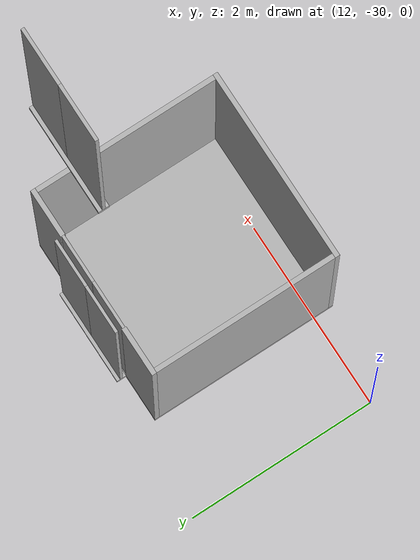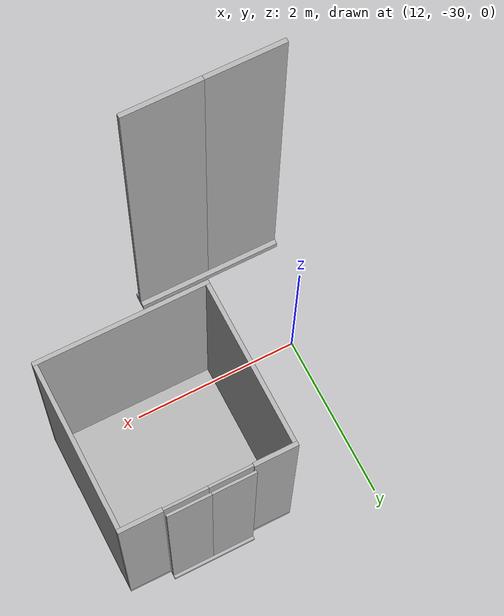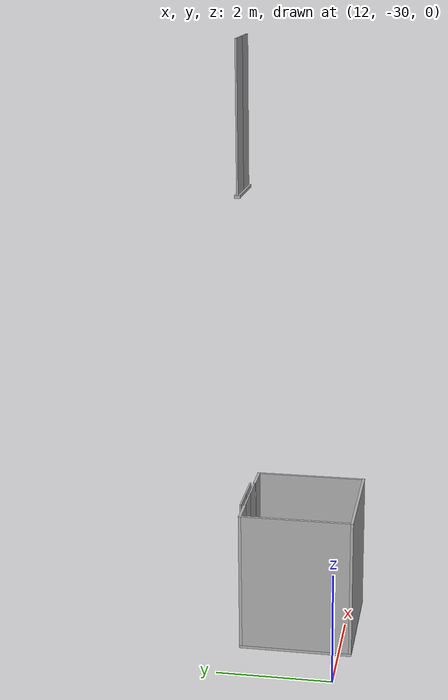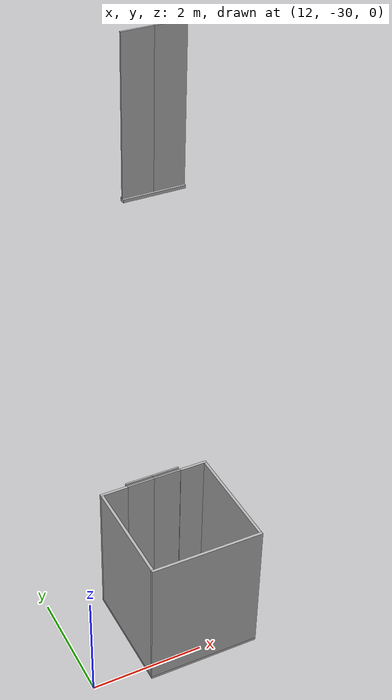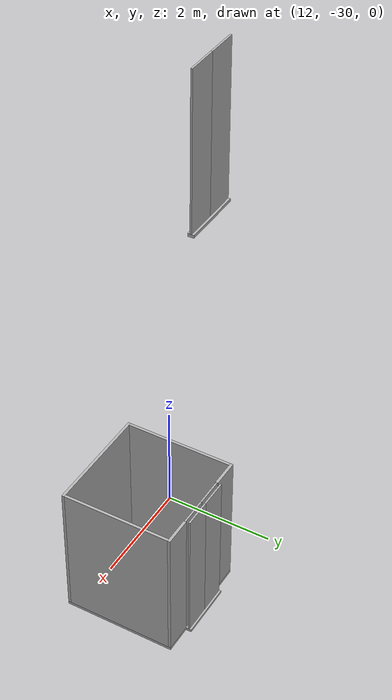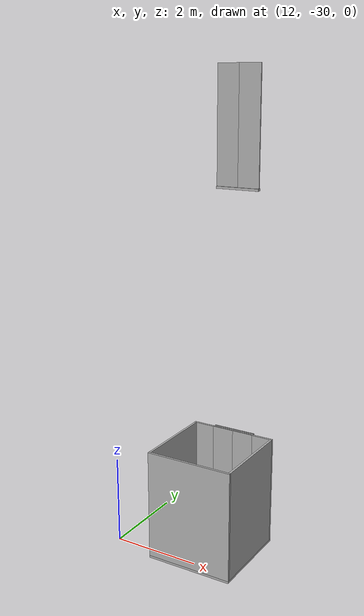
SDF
<sdf version="1.7">
 <world name="sim_world">
  <model name="ShaftDoor_lift_L1_doors">
   <pose>13.973163058344308 -28.166613667447187 0.0 0 0 0.0</pose>
   <link name="right_door">
    <pose>0.25 0 1.25 0 0 0</pose>
    <visual name="right_door_visual">
     <geometry><box><size>0.5 0.03 2.5</size></box></geometry>
     <material>
      <ambient>0.5 0.5 0.5 1</ambient>
      <diffuse>0.7 0.7 0.7 1</diffuse>
      <specular>0.6 0.6 0.6 1</specular>
      <emissive>0.1 0.1 0.1 1</emissive>
     </material>
    </visual>
    <collision name="right_door_collision">
     <geometry><box><size>0.5 0.03 2.5</size></box></geometry>
     <surface><contact><collide_bitmask>0x02</collide_bitmask></contact></surface>
    </collision>
   </link>
   <link name="left_door">
    <pose>-0.25 0 1.25 0 0 0</pose>
    <visual name="left_door_visual">
     <geometry><box><size>0.5 0.03 2.5</size></box></geometry>
     <material>
      <ambient>0.5 0.5 0.5 1</ambient>
      <diffuse>0.7 0.7 0.7 1</diffuse>
      <specular>0.6 0.6 0.6 1</specular>
      <emissive>0.1 0.1 0.1 1</emissive>
     </material>
    </visual>
    <collision name="left_door_collision">
     <geometry><box><size>0.5 0.03 2.5</size></box></geometry>
     <surface><contact><collide_bitmask>0x02</collide_bitmask></contact></surface>
    </collision>
   </link>
   <joint name="right_joint" type="prismatic">
    <parent>world</parent>
    <child>right_door</child>
    <axis><xyz>1 0 0</xyz><limit><lower>0</lower><upper>0.5</upper></limit></axis>
   </joint>
   <joint name="left_joint" type="prismatic">
    <parent>world</parent>
    <child>left_door</child>
    <axis><xyz>1 0 0</xyz><limit><lower>-0.5</lower><upper>0</upper></limit></axis>
   </joint>
   <link name="ramp">
    <pose>0 0 -0.025 0 0 0</pose>
    <visual name="ramp_visual">
     <geometry><box><size>1.0 0.1 0.05</size></box></geometry>
     <material>
      <ambient>0.5 0.5 0.5 1</ambient>
      <diffuse>0.7 0.7 0.7 1</diffuse>
      <specular>0.6 0.6 0.6 1</specular>
      <emissive>0.1 0.1 0.1 1</emissive>
     </material>
    </visual>
    <collision name="ramp_collision">
     <geometry><box><size>1.0 0.1 0.05</size></box></geometry>
     <surface><contact><collide_bitmask>0x02</collide_bitmask></contact></surface>
    </collision>
   </link>
   <joint name="ramp_joint" type="fixed"><parent>world</parent><child>ramp</child></joint>
   <plugin name="register_component" filename="libregister_component.so">
    <component name="Door">
     <v_max_door>0.3</v_max_door>
     <a_max_door>0.2</a_max_door>
     <a_nom_door>0.1</a_nom_door>
     <dx_min_door>0.0001</dx_min_door>
     <f_max_door>35.0</f_max_door>
     <door left_joint_name="left_joint" name="ShaftDoor_lift_L1_doors" right_joint_name="right_joint" type="DoubleSlidingDoor"/>
    </component>
   </plugin>
  </model>
  <model name="ShaftDoor_lift_L2_doors">
   <pose>13.973163058344308 -28.166613667447187 8.0 0 0 0.0</pose>
   <link name="right_door">
    <pose>0.25 0 1.25 0 0 0</pose>
    <visual name="right_door_visual">
     <geometry><box><size>0.5 0.03 2.5</size></box></geometry>
     <material>
      <ambient>0.5 0.5 0.5 1</ambient>
      <diffuse>0.7 0.7 0.7 1</diffuse>
      <specular>0.6 0.6 0.6 1</specular>
      <emissive>0.1 0.1 0.1 1</emissive>
     </material>
    </visual>
    <collision name="right_door_collision">
     <geometry><box><size>0.5 0.03 2.5</size></box></geometry>
     <surface><contact><collide_bitmask>0x02</collide_bitmask></contact></surface>
    </collision>
   </link>
   <link name="left_door">
    <pose>-0.25 0 1.25 0 0 0</pose>
    <visual name="left_door_visual">
     <geometry><box><size>0.5 0.03 2.5</size></box></geometry>
     <material>
      <ambient>0.5 0.5 0.5 1</ambient>
      <diffuse>0.7 0.7 0.7 1</diffuse>
      <specular>0.6 0.6 0.6 1</specular>
      <emissive>0.1 0.1 0.1 1</emissive>
     </material>
    </visual>
    <collision name="left_door_collision">
     <geometry><box><size>0.5 0.03 2.5</size></box></geometry>
     <surface><contact><collide_bitmask>0x02</collide_bitmask></contact></surface>
    </collision>
   </link>
   <joint name="right_joint" type="prismatic">
    <parent>world</parent>
    <child>right_door</child>
    <axis><xyz>1 0 0</xyz><limit><lower>0</lower><upper>0.5</upper></limit></axis>
   </joint>
   <joint name="left_joint" type="prismatic">
    <parent>world</parent>
    <child>left_door</child>
    <axis><xyz>1 0 0</xyz><limit><lower>-0.5</lower><upper>0</upper></limit></axis>
   </joint>
   <link name="ramp">
    <pose>0 0 -0.025 0 0 0</pose>
    <visual name="ramp_visual">
     <geometry><box><size>1.0 0.1 0.05</size></box></geometry>
     <material>
      <ambient>0.5 0.5 0.5 1</ambient>
      <diffuse>0.7 0.7 0.7 1</diffuse>
      <specular>0.6 0.6 0.6 1</specular>
      <emissive>0.1 0.1 0.1 1</emissive>
     </material>
    </visual>
    <collision name="ramp_collision">
     <geometry><box><size>1.0 0.1 0.05</size></box></geometry>
     <surface><contact><collide_bitmask>0x02</collide_bitmask></contact></surface>
    </collision>
   </link>
   <joint name="ramp_joint" type="fixed"><parent>world</parent><child>ramp</child></joint>
   <plugin name="register_component" filename="libregister_component.so">
    <component name="Door">
     <v_max_door>0.3</v_max_door>
     <a_max_door>0.2</a_max_door>
     <a_nom_door>0.1</a_nom_door>
     <dx_min_door>0.0001</dx_min_door>
     <f_max_door>35.0</f_max_door>
     <door left_joint_name="left_joint" name="ShaftDoor_lift_L2_doors" right_joint_name="right_joint" type="DoubleSlidingDoor"/>
    </component>
   </plugin>
  </model>
  <model name="lift">
   <link name="platform">
    <inertial>
     <mass>1200</mass>
     <inertia><ixx>400.25000000000006</ixx><iyy>400.25000000000006</iyy><izz>800.0</izz></inertia>
    </inertial>
    <visual name="floor_visual">
     <pose>0 0 -0.025 0 0 0</pose>
     <geometry><box><size>2.0 2.0 0.05</size></box></geometry>
     <material>
      <ambient>0.5 0.5 0.5 1</ambient>
      <diffuse>0.7 0.7 0.7 1</diffuse>
      <specular>0.6 0.6 0.6 1</specular>
      <emissive>0.1 0.1 0.1 1</emissive>
     </material>
    </visual>
    <collision name="floor_collision">
     <pose>0 0 -0.025 0 0 0</pose>
     <geometry><box><size>2.0 2.0 0.05</size></box></geometry>
     <surface><contact><collide_bitmask>0x01</collide_bitmask></contact></surface>
    </collision>
    <visual name="frontwall1_visual">
     <pose>-0.75 0.975 1.25 0 0 0</pose>
     <geometry><box><size>0.5 0.05 2.5</size></box></geometry>
     <material>
      <ambient>0.5 0.5 0.5 1</ambient>
      <diffuse>0.7 0.7 0.7 1</diffuse>
      <specular>0.6 0.6 0.6 1</specular>
      <emissive>0.1 0.1 0.1 1</emissive>
     </material>
    </visual>
    <collision name="frontwall1_collision">
     <pose>-0.75 0.975 1.25 0 0 0</pose>
     <geometry><box><size>0.5 0.05 2.5</size></box></geometry>
     <surface><contact><collide_bitmask>0x01</collide_bitmask></contact></surface>
    </collision>
    <visual name="frontwall2_visual">
     <pose>0.75 0.975 1.25 0 0 0</pose>
     <geometry><box><size>0.5 0.05 2.5</size></box></geometry>
     <material>
      <ambient>0.5 0.5 0.5 1</ambient>
      <diffuse>0.7 0.7 0.7 1</diffuse>
      <specular>0.6 0.6 0.6 1</specular>
      <emissive>0.1 0.1 0.1 1</emissive>
     </material>
    </visual>
    <collision name="frontwall2_collision">
     <pose>0.75 0.975 1.25 0 0 0</pose>
     <geometry><box><size>0.5 0.05 2.5</size></box></geometry>
     <surface><contact><collide_bitmask>0x01</collide_bitmask></contact></surface>
    </collision>
    <visual name="backwall1_visual">
     <pose>0.0 -0.975 1.25 0 0 0</pose>
     <geometry><box><size>2.0 0.05 2.5</size></box></geometry>
     <material>
      <ambient>0.5 0.5 0.5 1</ambient>
      <diffuse>0.7 0.7 0.7 1</diffuse>
      <specular>0.6 0.6 0.6 1</specular>
      <emissive>0.1 0.1 0.1 1</emissive>
     </material>
    </visual>
    <collision name="backwall1_collision">
     <pose>0.0 -0.975 1.25 0 0 0</pose>
     <geometry><box><size>2.0 0.05 2.5</size></box></geometry>
     <surface><contact><collide_bitmask>0x01</collide_bitmask></contact></surface>
    </collision>
    <visual name="leftwall1_visual">
     <pose>-0.975 0.0 1.25 0 0 1.5707963267948966</pose>
     <geometry><box><size>1.9 0.05 2.5</size></box></geometry>
     <material>
      <ambient>0.5 0.5 0.5 1</ambient>
      <diffuse>0.7 0.7 0.7 1</diffuse>
      <specular>0.6 0.6 0.6 1</specular>
      <emissive>0.1 0.1 0.1 1</emissive>
     </material>
    </visual>
    <collision name="leftwall1_collision">
     <pose>-0.975 0.0 1.25 0 0 1.5707963267948966</pose>
     <geometry><box><size>1.9 0.05 2.5</size></box></geometry>
     <surface><contact><collide_bitmask>0x01</collide_bitmask></contact></surface>
    </collision>
    <visual name="rightwall1_visual">
     <pose>0.975 0.0 1.25 0 0 1.5707963267948966</pose>
     <geometry><box><size>1.9 0.05 2.5</size></box></geometry>
     <material>
      <ambient>0.5 0.5 0.5 1</ambient>
      <diffuse>0.7 0.7 0.7 1</diffuse>
      <specular>0.6 0.6 0.6 1</specular>
      <emissive>0.1 0.1 0.1 1</emissive>
     </material>
    </visual>
    <collision name="rightwall1_collision">
     <pose>0.975 0.0 1.25 0 0 1.5707963267948966</pose>
     <geometry><box><size>1.9 0.05 2.5</size></box></geometry>
     <surface><contact><collide_bitmask>0x01</collide_bitmask></contact></surface>
    </collision>
   </link>
   <joint name="cabin_joint" type="prismatic">
    <parent>world</parent>
    <child>platform</child>
    <axis><xyz>0 0 1</xyz></axis>
   </joint>
   <model name="CabinDoor_lift_doors">
    <pose>0.0 0.975 0 0 0 0.0</pose>
    <link name="right_door">
     <pose>0.25 0 1.25 0 0 0</pose>
     <visual name="right_door_visual">
      <geometry><box><size>0.5 0.03 2.5</size></box></geometry>
      <material>
       <ambient>0.5 0.5 0.5 1</ambient>
       <diffuse>0.7 0.7 0.7 1</diffuse>
       <specular>0.6 0.6 0.6 1</specular>
       <emissive>0.1 0.1 0.1 1</emissive>
      </material>
     </visual>
     <collision name="right_door_collision">
      <geometry><box><size>0.5 0.03 2.5</size></box></geometry>
      <surface><contact><collide_bitmask>0x02</collide_bitmask></contact></surface>
     </collision>
    </link>
    <link name="left_door">
     <pose>-0.25 0 1.25 0 0 0</pose>
     <visual name="left_door_visual">
      <geometry><box><size>0.5 0.03 2.5</size></box></geometry>
      <material>
       <ambient>0.5 0.5 0.5 1</ambient>
       <diffuse>0.7 0.7 0.7 1</diffuse>
       <specular>0.6 0.6 0.6 1</specular>
       <emissive>0.1 0.1 0.1 1</emissive>
      </material>
     </visual>
     <collision name="left_door_collision">
      <geometry><box><size>0.5 0.03 2.5</size></box></geometry>
      <surface><contact><collide_bitmask>0x02</collide_bitmask></contact></surface>
     </collision>
    </link>
    <plugin name="register_component" filename="libregister_component.so">
     <component name="Door">
      <v_max_door>0.3</v_max_door>
      <a_max_door>0.2</a_max_door>
      <a_nom_door>0.1</a_nom_door>
      <dx_min_door>0.0001</dx_min_door>
      <f_max_door>35.0</f_max_door>
      <door left_joint_name="CabinDoor_lift_doors_left_joint" name="CabinDoor_lift_doors" right_joint_name="CabinDoor_lift_doors_right_joint" type="DoubleSlidingDoor"/>
     </component>
    </plugin>
   </model>
   <joint name="CabinDoor_lift_doors_right_joint" type="prismatic">
    <parent>platform</parent>
    <child>CabinDoor_lift_doors::right_door</child>
    <axis><xyz>1 0 0</xyz><limit><lower>0</lower><upper>0.5</upper></limit></axis>
   </joint>
   <joint name="CabinDoor_lift_doors_left_joint" type="prismatic">
    <parent>platform</parent>
    <child>CabinDoor_lift_doors::left_door</child>
    <axis><xyz>1 0 0</xyz><limit><lower>-0.5</lower><upper>0</upper></limit></axis>
   </joint>
   <plugin name="register_component" filename="libregister_component.so">
    <component name="Lift">
     <lift_name>lift</lift_name>
     <floor name="L1" elevation="0.0">
      <door_pair cabin_door="CabinDoor_lift_doors" shaft_door="ShaftDoor_lift_L1_doors"/>
     </floor>
     <floor name="L2" elevation="8.0">
      <door_pair cabin_door="CabinDoor_lift_doors" shaft_door="ShaftDoor_lift_L2_doors"/>
     </floor>
     <initial_floor>L1</initial_floor>
     <v_max_cabin>2.0</v_max_cabin>
     <a_max_cabin>1.2</a_max_cabin>
     <a_nom_cabin>1.0</a_nom_cabin>
     <dx_min_cabin>0.001</dx_min_cabin>
     <f_max_cabin>25323.0</f_max_cabin>
     <cabin_joint_name>cabin_joint</cabin_joint_name>
    </component>
   </plugin>
   <pose>13.973163058344308 -29.216613667447188 0 0 0 0.0</pose>
  </model>
 </world>
</sdf>
